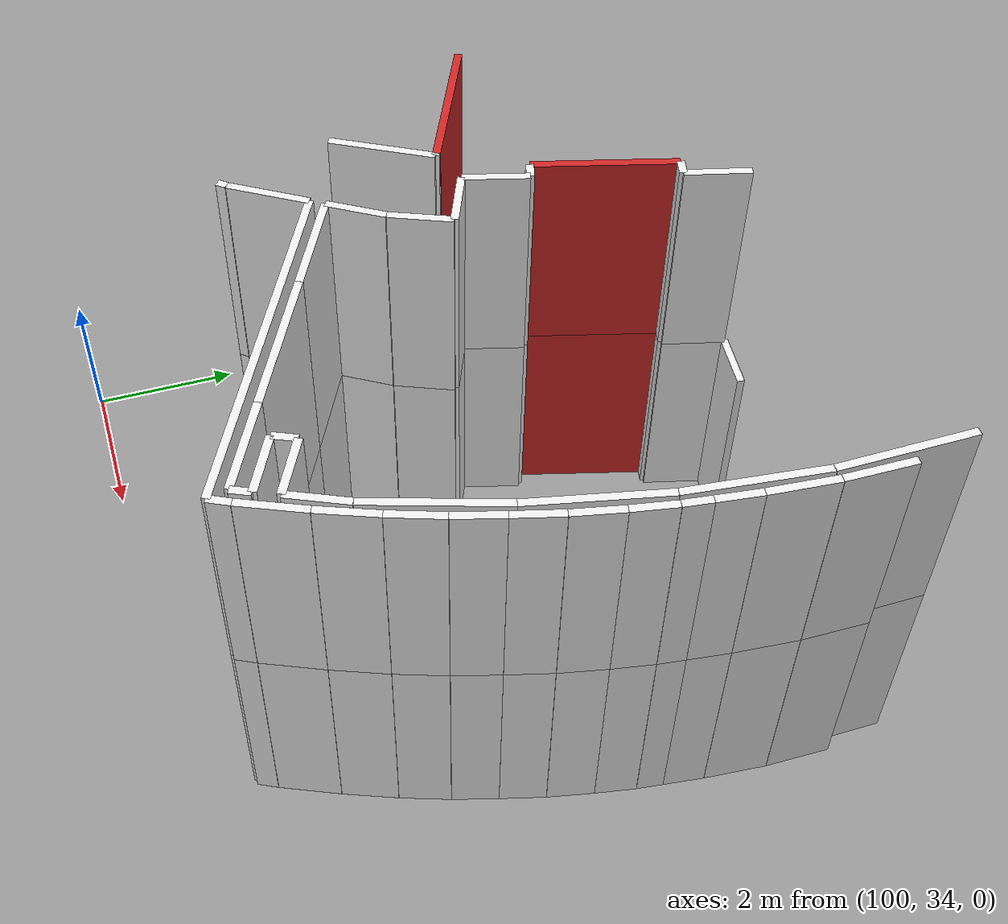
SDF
<sdf version="1.6">
 <world name="default">
  <model name="wall_101.7_39.1_1.5">
   <static>true</static>
   <pose>101.71000000002095 39.06499999994412 1.5 0 0 -0.4219085234522241</pose>
   <link name="link">
    <visual name="visual">
     <geometry><box><size>1.9291708063548034 0.1 3</size></box></geometry>
     <material>
      <script><uri>file://media/materials/scripts/gazebo.material</uri><name>Gazebo/Red</name></script>
     </material>
    </visual>
    <collision name="collision"><geometry><box><size>1.9291708063548034 0.1 3</size></box></geometry></collision>
   </link>
  </model>
  <model name="wall_103.3_40.6_1.5">
   <static>true</static>
   <pose>103.3299999999872 40.59000000008382 1.5 0 0 -1.823690391929414</pose>
   <link name="link">
    <visual name="visual">
     <geometry><box><size>1.8384776308918926 0.1 3</size></box></geometry>
     <material>
      <script><uri>file://media/materials/scripts/gazebo.material</uri><name>Gazebo/Red</name></script>
     </material>
    </visual>
    <collision name="collision"><geometry><box><size>1.8384776308918926 0.1 3</size></box></geometry></collision>
   </link>
  </model>
  <model name="wall_101.7_39.1_4.5">
   <static>true</static>
   <pose>101.71000000002095 39.06499999994412 4.5 0 0 -0.4219085234522241</pose>
   <link name="link">
    <visual name="visual">
     <geometry><box><size>1.9291708063548034 0.1 3</size></box></geometry>
     <material>
      <script><uri>file://media/materials/scripts/gazebo.material</uri><name>Gazebo/Red</name></script>
     </material>
    </visual>
    <collision name="collision"><geometry><box><size>1.9291708063548034 0.1 3</size></box></geometry></collision>
   </link>
  </model>
  <model name="wall_103.3_40.6_4.5">
   <static>true</static>
   <pose>103.3299999999872 40.59000000008382 4.5 0 0 -1.823690391929414</pose>
   <link name="link">
    <visual name="visual">
     <geometry><box><size>1.8384776308918926 0.1 3</size></box></geometry>
     <material>
      <script><uri>file://media/materials/scripts/gazebo.material</uri><name>Gazebo/Red</name></script>
     </material>
    </visual>
    <collision name="collision"><geometry><box><size>1.8384776308918926 0.1 3</size></box></geometry></collision>
   </link>
  </model>
  <model name="wall_103.7_41.9_1.5">
   <static>true</static>
   <pose>103.66500000000815 41.87999999988824 1.5 0 0 -1.8275046573099654</pose>
   <link name="link">
    <visual name="visual">
     <geometry><box><size>0.8271033790952481 0.1 3</size></box></geometry>
     <material>
      <script><uri>file://media/materials/scripts/gazebo.material</uri><name>Gazebo/White</name></script>
     </material>
    </visual>
    <collision name="collision"><geometry><box><size>0.8271033790952481 0.1 3</size></box></geometry></collision>
   </link>
  </model>
  <model name="wall_103.0_39.3_1.5">
   <static>true</static>
   <pose>103.0 39.31000000005588 1.5 0 0 -1.821799013301479</pose>
   <link name="link">
    <visual name="visual">
     <geometry><box><size>0.8052328858089288 0.1 3</size></box></geometry>
     <material>
      <script><uri>file://media/materials/scripts/gazebo.material</uri><name>Gazebo/White</name></script>
     </material>
    </visual>
    <collision name="collision"><geometry><box><size>0.8052328858089288 0.1 3</size></box></geometry></collision>
   </link>
  </model>
  <model name="wall_102.8_38.9_1.5">
   <static>true</static>
   <pose>102.8300000000163 38.949999999953434 1.5 0 0 2.736700867003636</pose>
   <link name="link">
    <visual name="visual">
     <geometry><box><size>0.15231546215213043 0.1 3</size></box></geometry>
     <material>
      <script><uri>file://media/materials/scripts/gazebo.material</uri><name>Gazebo/White</name></script>
     </material>
    </visual>
    <collision name="collision"><geometry><box><size>0.15231546215213043 0.1 3</size></box></geometry></collision>
   </link>
  </model>
  <model name="wall_102.7_38.9_1.5">
   <static>true</static>
   <pose>102.72500000000582 38.90999999991618 1.5 0 0 -2.0344439354630874</pose>
   <link name="link">
    <visual name="visual">
     <geometry><box><size>0.15652475854472905 0.1 3</size></box></geometry>
     <material>
      <script><uri>file://media/materials/scripts/gazebo.material</uri><name>Gazebo/White</name></script>
     </material>
    </visual>
    <collision name="collision"><geometry><box><size>0.15652475854472905 0.1 3</size></box></geometry></collision>
   </link>
  </model>
  <model name="wall_102.7_38.8_1.5">
   <static>true</static>
   <pose>102.67999999999302 38.84499999997206 1.5 0 0 2.677945035275761</pose>
   <link name="link">
    <visual name="visual">
     <geometry><box><size>0.022360679899947934 0.1 3</size></box></geometry>
     <material>
      <script><uri>file://media/materials/scripts/gazebo.material</uri><name>Gazebo/White</name></script>
     </material>
    </visual>
    <collision name="collision">
     <geometry><box><size>0.022360679899947934 0.1 3</size></box></geometry>
    </collision>
   </link>
  </model>
  <model name="wall_102.6_38.8_1.5">
   <static>true</static>
   <pose>102.63000000000466 38.76000000000931 1.5 0 0 -1.9890206558340546</pose>
   <link name="link">
    <visual name="visual">
     <geometry><box><size>0.19697715617209063 0.1 3</size></box></geometry>
     <material>
      <script><uri>file://media/materials/scripts/gazebo.material</uri><name>Gazebo/White</name></script>
     </material>
    </visual>
    <collision name="collision"><geometry><box><size>0.19697715617209063 0.1 3</size></box></geometry></collision>
   </link>
  </model>
  <model name="wall_102.6_38.7_1.5">
   <static>true</static>
   <pose>102.60500000001048 38.65999999991618 1.5 0 0 -0.5880026044430701</pose>
   <link name="link">
    <visual name="visual">
     <geometry><box><size>0.03605551273978751 0.1 3</size></box></geometry>
     <material>
      <script><uri>file://media/materials/scripts/gazebo.material</uri><name>Gazebo/White</name></script>
     </material>
    </visual>
    <collision name="collision"><geometry><box><size>0.03605551273978751 0.1 3</size></box></geometry></collision>
   </link>
  </model>
  <model name="wall_102.3_38.1_1.5">
   <static>true</static>
   <pose>102.30499999999302 38.05499999993481 1.5 0 0 -2.0576955586286396</pose>
   <link name="link">
    <visual name="visual">
     <geometry><box><size>1.3464768842697874 0.1 3</size></box></geometry>
     <material>
      <script><uri>file://media/materials/scripts/gazebo.material</uri><name>Gazebo/White</name></script>
     </material>
    </visual>
    <collision name="collision"><geometry><box><size>1.3464768842697874 0.1 3</size></box></geometry></collision>
   </link>
  </model>
  <model name="wall_108.5_42.2_1.5">
   <static>true</static>
   <pose>108.46499999999651 42.169999999925494 1.5 0 0 -1.5529410816701883</pose>
   <link name="link">
    <visual name="visual">
     <geometry><box><size>1.6802678354943374 0.1 3</size></box></geometry>
     <material>
      <script><uri>file://media/materials/scripts/gazebo.material</uri><name>Gazebo/White</name></script>
     </material>
    </visual>
    <collision name="collision"><geometry><box><size>1.6802678354943374 0.1 3</size></box></geometry></collision>
   </link>
  </model>
  <model name="wall_108.4_40.5_1.5">
   <static>true</static>
   <pose>108.39999999999418 40.48999999999069 1.5 0 0 -1.6657480331131271</pose>
   <link name="link">
    <visual name="visual">
     <geometry><box><size>1.6876018489427735 0.1 3</size></box></geometry>
     <material>
      <script><uri>file://media/materials/scripts/gazebo.material</uri><name>Gazebo/White</name></script>
     </material>
    </visual>
    <collision name="collision"><geometry><box><size>1.6876018489427735 0.1 3</size></box></geometry></collision>
   </link>
  </model>
  <model name="wall_108.2_38.8_1.5">
   <static>true</static>
   <pose>108.15499999999884 38.829999999841675 1.5 0 0 -1.7693642190444387</pose>
   <link name="link">
    <visual name="visual">
     <geometry><box><size>1.672871782426382 0.1 3</size></box></geometry>
     <material>
      <script><uri>file://media/materials/scripts/gazebo.material</uri><name>Gazebo/White</name></script>
     </material>
    </visual>
    <collision name="collision"><geometry><box><size>1.672871782426382 0.1 3</size></box></geometry></collision>
   </link>
  </model>
  <model name="wall_107.7_37.2_1.5">
   <static>true</static>
   <pose>107.74499999999534 37.204999999841675 1.5 0 0 -1.8662371639558804</pose>
   <link name="link">
    <visual name="visual">
     <geometry><box><size>1.6829141390965354 0.1 3</size></box></geometry>
     <material>
      <script><uri>file://media/materials/scripts/gazebo.material</uri><name>Gazebo/White</name></script>
     </material>
    </visual>
    <collision name="collision"><geometry><box><size>1.6829141390965354 0.1 3</size></box></geometry></collision>
   </link>
  </model>
  <model name="wall_107.4_36.1_1.5">
   <static>true</static>
   <pose>107.35000000000582 36.05499999993481 1.5 0 0 -1.980923667351811</pose>
   <link name="link">
    <visual name="visual">
     <geometry><box><size>0.7523961721831801 0.1 3</size></box></geometry>
     <material>
      <script><uri>file://media/materials/scripts/gazebo.material</uri><name>Gazebo/White</name></script>
     </material>
    </visual>
    <collision name="collision"><geometry><box><size>0.7523961721831801 0.1 3</size></box></geometry></collision>
   </link>
  </model>
  <model name="wall_106.9_35.9_1.5">
   <static>true</static>
   <pose>106.86000000001513 35.87999999988824 1.5 0 0 2.677945044760186</pose>
   <link name="link">
    <visual name="visual">
     <geometry><box><size>0.760263112277041 0.1 3</size></box></geometry>
     <material>
      <script><uri>file://media/materials/scripts/gazebo.material</uri><name>Gazebo/White</name></script>
     </material>
    </visual>
    <collision name="collision"><geometry><box><size>0.760263112277041 0.1 3</size></box></geometry></collision>
   </link>
  </model>
  <model name="wall_106.5_35.9_1.5">
   <static>true</static>
   <pose>106.46000000002095 35.90999999991618 1.5 0 0 -1.9756881133308752</pose>
   <link name="link">
    <visual name="visual">
     <geometry><box><size>0.3046309240443975 0.1 3</size></box></geometry>
     <material>
      <script><uri>file://media/materials/scripts/gazebo.material</uri><name>Gazebo/White</name></script>
     </material>
    </visual>
    <collision name="collision"><geometry><box><size>0.3046309240443975 0.1 3</size></box></geometry></collision>
   </link>
  </model>
  <model name="wall_106.7_35.6_1.5">
   <static>true</static>
   <pose>106.74500000002445 35.60000000009313 1.5 0 0 -0.4578337208438593</pose>
   <link name="link">
    <visual name="visual">
     <geometry><box><size>0.769220384481512 0.1 3</size></box></geometry>
     <material>
      <script><uri>file://media/materials/scripts/gazebo.material</uri><name>Gazebo/White</name></script>
     </material>
    </visual>
    <collision name="collision"><geometry><box><size>0.769220384481512 0.1 3</size></box></geometry></collision>
   </link>
  </model>
  <model name="wall_107.0_35.3_1.5">
   <static>true</static>
   <pose>107.04000000000815 35.31500000017695 1.5 0 0 -1.9809236674937056</pose>
   <link name="link">
    <visual name="visual">
     <geometry><box><size>0.25079872407653264 0.1 3</size></box></geometry>
     <material>
      <script><uri>file://media/materials/scripts/gazebo.material</uri><name>Gazebo/White</name></script>
     </material>
    </visual>
    <collision name="collision"><geometry><box><size>0.25079872407653264 0.1 3</size></box></geometry></collision>
   </link>
  </model>
  <model name="wall_106.4_35.5_1.5">
   <static>true</static>
   <pose>106.44999999998254 35.47000000020489 1.5 0 0 2.6779450445674287</pose>
   <link name="link">
    <visual name="visual">
     <geometry><box><size>1.207476707881124 0.1 3</size></box></geometry>
     <material>
      <script><uri>file://media/materials/scripts/gazebo.material</uri><name>Gazebo/White</name></script>
     </material>
    </visual>
    <collision name="collision"><geometry><box><size>1.207476707881124 0.1 3</size></box></geometry></collision>
   </link>
  </model>
  <model name="wall_105.1_36.2_1.5">
   <static>true</static>
   <pose>105.08499999999185 36.15500000002794 1.5 0 0 2.675523741995435</pose>
   <link name="link">
    <visual name="visual">
     <geometry><box><size>1.8469975634080924 0.1 3</size></box></geometry>
     <material>
      <script><uri>file://media/materials/scripts/gazebo.material</uri><name>Gazebo/White</name></script>
     </material>
    </visual>
    <collision name="collision"><geometry><box><size>1.8469975634080924 0.1 3</size></box></geometry></collision>
   </link>
  </model>
  <model name="wall_103.7_36.9_1.5">
   <static>true</static>
   <pose>103.6700000000128 36.86499999999069 1.5 0 0 2.6779450443719415</pose>
   <link name="link">
    <visual name="visual">
     <geometry><box><size>1.3192801068602384 0.1 3</size></box></geometry>
     <material>
      <script><uri>file://media/materials/scripts/gazebo.material</uri><name>Gazebo/White</name></script>
     </material>
    </visual>
    <collision name="collision"><geometry><box><size>1.3192801068602384 0.1 3</size></box></geometry></collision>
   </link>
  </model>
  <model name="wall_103.3_37.5_1.5">
   <static>true</static>
   <pose>103.27499999999418 37.485000000102445 1.5 0 0 1.0303768265111433</pose>
   <link name="link">
    <visual name="visual">
     <geometry><box><size>0.7580237462272686 0.1 3</size></box></geometry>
     <material>
      <script><uri>file://media/materials/scripts/gazebo.material</uri><name>Gazebo/White</name></script>
     </material>
    </visual>
    <collision name="collision"><geometry><box><size>0.7580237462272686 0.1 3</size></box></geometry></collision>
   </link>
  </model>
  <model name="wall_103.6_38.2_1.5">
   <static>true</static>
   <pose>103.61999999999534 38.18500000005588 1.5 0 0 1.1902899496290074</pose>
   <link name="link">
    <visual name="visual">
     <geometry><box><size>0.8077747210874698 0.1 3</size></box></geometry>
     <material>
      <script><uri>file://media/materials/scripts/gazebo.material</uri><name>Gazebo/White</name></script>
     </material>
    </visual>
    <collision name="collision"><geometry><box><size>0.8077747210874698 0.1 3</size></box></geometry></collision>
   </link>
  </model>
  <model name="wall_103.4_38.7_1.5">
   <static>true</static>
   <pose>103.43000000002212 38.699999999953434 1.5 0 0 2.750985610146119</pose>
   <link name="link">
    <visual name="visual">
     <geometry><box><size>0.7353910523495384 0.1 3</size></box></geometry>
     <material>
      <script><uri>file://media/materials/scripts/gazebo.material</uri><name>Gazebo/White</name></script>
     </material>
    </visual>
    <collision name="collision"><geometry><box><size>0.7353910523495384 0.1 3</size></box></geometry></collision>
   </link>
  </model>
  <model name="wall_103.2_39.2_1.5">
   <static>true</static>
   <pose>103.19500000000698 39.24499999987893 1.5 0 0 1.3171222307161075</pose>
   <link name="link">
    <visual name="visual">
     <geometry><box><size>0.8367795409036232 0.1 3</size></box></geometry>
     <material>
      <script><uri>file://media/materials/scripts/gazebo.material</uri><name>Gazebo/White</name></script>
     </material>
    </visual>
    <collision name="collision"><geometry><box><size>0.8367795409036232 0.1 3</size></box></geometry></collision>
   </link>
  </model>
  <model name="wall_103.2_39.7_1.5">
   <static>true</static>
   <pose>103.19999999998254 39.675000000046566 1.5 0 0 2.896613989161817</pose>
   <link name="link">
    <visual name="visual">
     <geometry><box><size>0.20615528135994066 0.1 3</size></box></geometry>
     <material>
      <script><uri>file://media/materials/scripts/gazebo.material</uri><name>Gazebo/White</name></script>
     </material>
    </visual>
    <collision name="collision"><geometry><box><size>0.20615528135994066 0.1 3</size></box></geometry></collision>
   </link>
  </model>
  <model name="wall_103.7_41.5_1.5">
   <static>true</static>
   <pose>103.66000000000349 41.45999999996275 1.5 0 0 -0.19739556001778746</pose>
   <link name="link">
    <visual name="visual">
     <geometry><box><size>0.20396078056243275 0.1 3</size></box></geometry>
     <material>
      <script><uri>file://media/materials/scripts/gazebo.material</uri><name>Gazebo/White</name></script>
     </material>
    </visual>
    <collision name="collision"><geometry><box><size>0.20396078056243275 0.1 3</size></box></geometry></collision>
   </link>
  </model>
  <model name="wall_103.9_41.8_1.5">
   <static>true</static>
   <pose>103.86000000001513 41.8499999998603 1.5 0 0 1.3315647267707733</pose>
   <link name="link">
    <visual name="visual">
     <geometry><box><size>0.8440379136802625 0.1 3</size></box></geometry>
     <material>
      <script><uri>file://media/materials/scripts/gazebo.material</uri><name>Gazebo/White</name></script>
     </material>
    </visual>
    <collision name="collision"><geometry><box><size>0.8440379136802625 0.1 3</size></box></geometry></collision>
   </link>
  </model>
  <model name="wall_104.3_42.2_1.5">
   <static>true</static>
   <pose>104.33999999999651 42.22999999998137 1.5 0 0 -0.07878396045834442</pose>
   <link name="link">
    <visual name="visual">
     <geometry><box><size>0.762364742020843 0.1 3</size></box></geometry>
     <material>
      <script><uri>file://media/materials/scripts/gazebo.material</uri><name>Gazebo/White</name></script>
     </material>
    </visual>
    <collision name="collision"><geometry><box><size>0.762364742020843 0.1 3</size></box></geometry></collision>
   </link>
  </model>
  <model name="wall_102.4_36.1_1.5">
   <static>true</static>
   <pose>102.39999999999418 36.050000000046566 1.5 0 0 0.8960553849262687</pose>
   <link name="link">
    <visual name="visual">
     <geometry><box><size>0.1280624848315624 0.1 3</size></box></geometry>
     <material>
      <script><uri>file://media/materials/scripts/gazebo.material</uri><name>Gazebo/White</name></script>
     </material>
    </visual>
    <collision name="collision"><geometry><box><size>0.1280624848315624 0.1 3</size></box></geometry></collision>
   </link>
  </model>
  <model name="wall_102.7_36.5_1.5">
   <static>true</static>
   <pose>102.70999999999185 36.545000000158325 1.5 0 0 1.0254345274736425</pose>
   <link name="link">
    <visual name="visual">
     <geometry><box><size>1.0410091259011396 0.1 3</size></box></geometry>
     <material>
      <script><uri>file://media/materials/scripts/gazebo.material</uri><name>Gazebo/White</name></script>
     </material>
    </visual>
    <collision name="collision"><geometry><box><size>1.0410091259011396 0.1 3</size></box></geometry></collision>
   </link>
  </model>
  <model name="wall_105.0_36.0_1.5">
   <static>true</static>
   <pose>105.00999999998021 35.97000000020489 1.5 0 0 -0.46561611040271994</pose>
   <link name="link">
    <visual name="visual">
     <geometry><box><size>4.543698933702924 0.1 3</size></box></geometry>
     <material>
      <script><uri>file://media/materials/scripts/gazebo.material</uri><name>Gazebo/White</name></script>
     </material>
    </visual>
    <collision name="collision"><geometry><box><size>4.543698933702924 0.1 3</size></box></geometry></collision>
   </link>
  </model>
  <model name="wall_107.1_35.1_1.5">
   <static>true</static>
   <pose>107.09999999997672 35.075000000186265 1.5 0 0 1.1232763516528652</pose>
   <link name="link">
    <visual name="visual">
     <geometry><box><size>0.2773084924752259 0.1 3</size></box></geometry>
     <material>
      <script><uri>file://media/materials/scripts/gazebo.material</uri><name>Gazebo/White</name></script>
     </material>
    </visual>
    <collision name="collision"><geometry><box><size>0.2773084924752259 0.1 3</size></box></geometry></collision>
   </link>
  </model>
  <model name="wall_107.3_35.6_1.5">
   <static>true</static>
   <pose>107.31999999997788 35.580000000074506 1.5 0 0 1.1722738810154851</pose>
   <link name="link">
    <visual name="visual">
     <geometry><box><size>0.8246211249202411 0.1 3</size></box></geometry>
     <material>
      <script><uri>file://media/materials/scripts/gazebo.material</uri><name>Gazebo/White</name></script>
     </material>
    </visual>
    <collision name="collision"><geometry><box><size>0.8246211249202411 0.1 3</size></box></geometry></collision>
   </link>
  </model>
  <model name="wall_107.6_36.3_1.5">
   <static>true</static>
   <pose>107.60999999998603 36.30499999993481 1.5 0 0 1.2104383562315624</pose>
   <link name="link">
    <visual name="visual">
     <geometry><box><size>0.7373601561840247 0.1 3</size></box></geometry>
     <material>
      <script><uri>file://media/materials/scripts/gazebo.material</uri><name>Gazebo/White</name></script>
     </material>
    </visual>
    <collision name="collision"><geometry><box><size>0.7373601561840247 0.1 3</size></box></geometry></collision>
   </link>
  </model>
  <model name="wall_107.8_37.0_1.5">
   <static>true</static>
   <pose>107.84500000000116 36.96999999997206 1.5 0 0 1.2537405736165406</pose>
   <link name="link">
    <visual name="visual">
     <geometry><box><size>0.6735725648923759 0.1 3</size></box></geometry>
     <material>
      <script><uri>file://media/materials/scripts/gazebo.material</uri><name>Gazebo/White</name></script>
     </material>
    </visual>
    <collision name="collision"><geometry><box><size>0.6735725648923759 0.1 3</size></box></geometry></collision>
   </link>
  </model>
  <model name="wall_108.0_37.6_1.5">
   <static>true</static>
   <pose>108.02999999999884 37.58499999996275 1.5 0 0 1.3059789968657436</pose>
   <link name="link">
    <visual name="visual">
     <geometry><box><size>0.6113100684725965 0.1 3</size></box></geometry>
     <material>
      <script><uri>file://media/materials/scripts/gazebo.material</uri><name>Gazebo/White</name></script>
     </material>
    </visual>
    <collision name="collision"><geometry><box><size>0.6113100684725965 0.1 3</size></box></geometry></collision>
   </link>
  </model>
  <model name="wall_108.2_38.2_1.5">
   <static>true</static>
   <pose>108.18499999999767 38.175000000046566 1.5 0 0 1.3218336210932762</pose>
   <link name="link">
    <visual name="visual">
     <geometry><box><size>0.6087692505216008 0.1 3</size></box></geometry>
     <material>
      <script><uri>file://media/materials/scripts/gazebo.material</uri><name>Gazebo/White</name></script>
     </material>
    </visual>
    <collision name="collision"><geometry><box><size>0.6087692505216008 0.1 3</size></box></geometry></collision>
   </link>
  </model>
  <model name="wall_108.3_38.8_1.5">
   <static>true</static>
   <pose>108.32000000000698 38.7750000001397 1.5 0 0 1.3765553305803602</pose>
   <link name="link">
    <visual name="visual">
     <geometry><box><size>0.6216912415659501 0.1 3</size></box></geometry>
     <material>
      <script><uri>file://media/materials/scripts/gazebo.material</uri><name>Gazebo/White</name></script>
     </material>
    </visual>
    <collision name="collision"><geometry><box><size>0.6216912415659501 0.1 3</size></box></geometry></collision>
   </link>
  </model>
  <model name="wall_108.4_39.4_1.5">
   <static>true</static>
   <pose>108.42499999998836 39.35000000009313 1.5 0 0 1.4056476494501888</pose>
   <link name="link">
    <visual name="visual">
     <geometry><box><size>0.547448627758227 0.1 3</size></box></geometry>
     <material>
      <script><uri>file://media/materials/scripts/gazebo.material</uri><name>Gazebo/White</name></script>
     </material>
    </visual>
    <collision name="collision"><geometry><box><size>0.547448627758227 0.1 3</size></box></geometry></collision>
   </link>
  </model>
  <model name="wall_108.5_39.8_1.5">
   <static>true</static>
   <pose>108.48999999999069 39.795000000158325 1.5 0 0 1.4570043195761424</pose>
   <link name="link">
    <visual name="visual">
     <geometry><box><size>0.35227829917293063 0.1 3</size></box></geometry>
     <material>
      <script><uri>file://media/materials/scripts/gazebo.material</uri><name>Gazebo/White</name></script>
     </material>
    </visual>
    <collision name="collision"><geometry><box><size>0.35227829917293063 0.1 3</size></box></geometry></collision>
   </link>
  </model>
  <model name="wall_108.5_40.2_1.5">
   <static>true</static>
   <pose>108.54000000000815 40.23999999999069 1.5 0 0 1.4601391055381852</pose>
   <link name="link">
    <visual name="visual">
     <geometry><box><size>0.5433231078621997 0.1 3</size></box></geometry>
     <material>
      <script><uri>file://media/materials/scripts/gazebo.material</uri><name>Gazebo/White</name></script>
     </material>
    </visual>
    <collision name="collision"><geometry><box><size>0.5433231078621997 0.1 3</size></box></geometry></collision>
   </link>
  </model>
  <model name="wall_108.6_40.9_1.5">
   <static>true</static>
   <pose>108.60000000000582 40.92999999993481 1.5 0 0 1.4994888620391533</pose>
   <link name="link">
    <visual name="visual">
     <geometry><box><size>0.8421401311727711 0.1 3</size></box></geometry>
     <material>
      <script><uri>file://media/materials/scripts/gazebo.material</uri><name>Gazebo/White</name></script>
     </material>
    </visual>
    <collision name="collision"><geometry><box><size>0.8421401311727711 0.1 3</size></box></geometry></collision>
   </link>
  </model>
  <model name="wall_108.6_41.8_1.5">
   <static>true</static>
   <pose>108.63000000000466 41.78500000014901 1.5 0 0 1.5707963267948966</pose>
   <link name="link">
    <visual name="visual">
     <geometry><box><size>0.8700000001117587 0.1 3</size></box></geometry>
     <material>
      <script><uri>file://media/materials/scripts/gazebo.material</uri><name>Gazebo/White</name></script>
     </material>
    </visual>
    <collision name="collision"><geometry><box><size>0.8700000001117587 0.1 3</size></box></geometry></collision>
   </link>
  </model>
  <model name="wall_108.5_40.7_1.5">
   <static>true</static>
   <pose>108.50500000000466 40.6500000001397 1.5 0 0 -1.6502465656866598</pose>
   <link name="link">
    <visual name="visual">
     <geometry><box><size>3.149936507426589 0.1 3</size></box></geometry>
     <material>
      <script><uri>file://media/materials/scripts/gazebo.material</uri><name>Gazebo/White</name></script>
     </material>
    </visual>
    <collision name="collision"><geometry><box><size>3.149936507426589 0.1 3</size></box></geometry></collision>
   </link>
  </model>
  <model name="wall_107.7_37.0_1.5">
   <static>true</static>
   <pose>107.70999999999185 37.015000000130385 1.5 0 0 -1.8845353992981464</pose>
   <link name="link">
    <visual name="visual">
     <geometry><box><size>4.341946567974497 0.1 3</size></box></geometry>
     <material>
      <script><uri>file://media/materials/scripts/gazebo.material</uri><name>Gazebo/White</name></script>
     </material>
    </visual>
    <collision name="collision"><geometry><box><size>4.341946567974497 0.1 3</size></box></geometry></collision>
   </link>
  </model>
  <model name="wall_102.6_38.7_4.5">
   <static>true</static>
   <pose>102.60500000001048 38.65999999991618 4.5 0 0 -0.5880026044430701</pose>
   <link name="link">
    <visual name="visual">
     <geometry><box><size>0.03605551273978751 0.1 3</size></box></geometry>
     <material>
      <script><uri>file://media/materials/scripts/gazebo.material</uri><name>Gazebo/White</name></script>
     </material>
    </visual>
    <collision name="collision"><geometry><box><size>0.03605551273978751 0.1 3</size></box></geometry></collision>
   </link>
  </model>
  <model name="wall_102.3_38.1_4.5">
   <static>true</static>
   <pose>102.30499999999302 38.05499999993481 4.5 0 0 -2.0576955586286396</pose>
   <link name="link">
    <visual name="visual">
     <geometry><box><size>1.3464768842697874 0.1 3</size></box></geometry>
     <material>
      <script><uri>file://media/materials/scripts/gazebo.material</uri><name>Gazebo/White</name></script>
     </material>
    </visual>
    <collision name="collision"><geometry><box><size>1.3464768842697874 0.1 3</size></box></geometry></collision>
   </link>
  </model>
  <model name="wall_108.5_42.2_4.5">
   <static>true</static>
   <pose>108.46499999999651 42.169999999925494 4.5 0 0 -1.5529410816701883</pose>
   <link name="link">
    <visual name="visual">
     <geometry><box><size>1.6802678354943374 0.1 3</size></box></geometry>
     <material>
      <script><uri>file://media/materials/scripts/gazebo.material</uri><name>Gazebo/White</name></script>
     </material>
    </visual>
    <collision name="collision"><geometry><box><size>1.6802678354943374 0.1 3</size></box></geometry></collision>
   </link>
  </model>
  <model name="wall_108.4_40.5_4.5">
   <static>true</static>
   <pose>108.39999999999418 40.48999999999069 4.5 0 0 -1.6657480331131271</pose>
   <link name="link">
    <visual name="visual">
     <geometry><box><size>1.6876018489427735 0.1 3</size></box></geometry>
     <material>
      <script><uri>file://media/materials/scripts/gazebo.material</uri><name>Gazebo/White</name></script>
     </material>
    </visual>
    <collision name="collision"><geometry><box><size>1.6876018489427735 0.1 3</size></box></geometry></collision>
   </link>
  </model>
  <model name="wall_108.2_38.8_4.5">
   <static>true</static>
   <pose>108.15499999999884 38.829999999841675 4.5 0 0 -1.7693642190444387</pose>
   <link name="link">
    <visual name="visual">
     <geometry><box><size>1.672871782426382 0.1 3</size></box></geometry>
     <material>
      <script><uri>file://media/materials/scripts/gazebo.material</uri><name>Gazebo/White</name></script>
     </material>
    </visual>
    <collision name="collision"><geometry><box><size>1.672871782426382 0.1 3</size></box></geometry></collision>
   </link>
  </model>
  <model name="wall_107.7_37.2_4.5">
   <static>true</static>
   <pose>107.74499999999534 37.204999999841675 4.5 0 0 -1.8662371639558804</pose>
   <link name="link">
    <visual name="visual">
     <geometry><box><size>1.6829141390965354 0.1 3</size></box></geometry>
     <material>
      <script><uri>file://media/materials/scripts/gazebo.material</uri><name>Gazebo/White</name></script>
     </material>
    </visual>
    <collision name="collision"><geometry><box><size>1.6829141390965354 0.1 3</size></box></geometry></collision>
   </link>
  </model>
  <model name="wall_107.4_36.1_4.5">
   <static>true</static>
   <pose>107.35000000000582 36.05499999993481 4.5 0 0 -1.980923667351811</pose>
   <link name="link">
    <visual name="visual">
     <geometry><box><size>0.7523961721831801 0.1 3</size></box></geometry>
     <material>
      <script><uri>file://media/materials/scripts/gazebo.material</uri><name>Gazebo/White</name></script>
     </material>
    </visual>
    <collision name="collision"><geometry><box><size>0.7523961721831801 0.1 3</size></box></geometry></collision>
   </link>
  </model>
  <model name="wall_106.9_35.9_4.5">
   <static>true</static>
   <pose>106.86000000001513 35.87999999988824 4.5 0 0 2.677945044760186</pose>
   <link name="link">
    <visual name="visual">
     <geometry><box><size>0.760263112277041 0.1 3</size></box></geometry>
     <material>
      <script><uri>file://media/materials/scripts/gazebo.material</uri><name>Gazebo/White</name></script>
     </material>
    </visual>
    <collision name="collision"><geometry><box><size>0.760263112277041 0.1 3</size></box></geometry></collision>
   </link>
  </model>
  <model name="wall_106.5_35.9_4.5">
   <static>true</static>
   <pose>106.46000000002095 35.90999999991618 4.5 0 0 -1.9756881133308752</pose>
   <link name="link">
    <visual name="visual">
     <geometry><box><size>0.3046309240443975 0.1 3</size></box></geometry>
     <material>
      <script><uri>file://media/materials/scripts/gazebo.material</uri><name>Gazebo/White</name></script>
     </material>
    </visual>
    <collision name="collision"><geometry><box><size>0.3046309240443975 0.1 3</size></box></geometry></collision>
   </link>
  </model>
  <model name="wall_106.7_35.6_4.5">
   <static>true</static>
   <pose>106.74500000002445 35.60000000009313 4.5 0 0 -0.4578337208438593</pose>
   <link name="link">
    <visual name="visual">
     <geometry><box><size>0.769220384481512 0.1 3</size></box></geometry>
     <material>
      <script><uri>file://media/materials/scripts/gazebo.material</uri><name>Gazebo/White</name></script>
     </material>
    </visual>
    <collision name="collision"><geometry><box><size>0.769220384481512 0.1 3</size></box></geometry></collision>
   </link>
  </model>
  <model name="wall_107.0_35.3_4.5">
   <static>true</static>
   <pose>107.04000000000815 35.31500000017695 4.5 0 0 -1.9809236674937056</pose>
   <link name="link">
    <visual name="visual">
     <geometry><box><size>0.25079872407653264 0.1 3</size></box></geometry>
     <material>
      <script><uri>file://media/materials/scripts/gazebo.material</uri><name>Gazebo/White</name></script>
     </material>
    </visual>
    <collision name="collision"><geometry><box><size>0.25079872407653264 0.1 3</size></box></geometry></collision>
   </link>
  </model>
  <model name="wall_106.4_35.5_4.5">
   <static>true</static>
   <pose>106.44999999998254 35.47000000020489 4.5 0 0 2.6779450445674287</pose>
   <link name="link">
    <visual name="visual">
     <geometry><box><size>1.207476707881124 0.1 3</size></box></geometry>
     <material>
      <script><uri>file://media/materials/scripts/gazebo.material</uri><name>Gazebo/White</name></script>
     </material>
    </visual>
    <collision name="collision"><geometry><box><size>1.207476707881124 0.1 3</size></box></geometry></collision>
   </link>
  </model>
  <model name="wall_105.1_36.2_4.5">
   <static>true</static>
   <pose>105.08499999999185 36.15500000002794 4.5 0 0 2.675523741995435</pose>
   <link name="link">
    <visual name="visual">
     <geometry><box><size>1.8469975634080924 0.1 3</size></box></geometry>
     <material>
      <script><uri>file://media/materials/scripts/gazebo.material</uri><name>Gazebo/White</name></script>
     </material>
    </visual>
    <collision name="collision"><geometry><box><size>1.8469975634080924 0.1 3</size></box></geometry></collision>
   </link>
  </model>
  <model name="wall_103.7_36.9_4.5">
   <static>true</static>
   <pose>103.6700000000128 36.86499999999069 4.5 0 0 2.6779450443719415</pose>
   <link name="link">
    <visual name="visual">
     <geometry><box><size>1.3192801068602384 0.1 3</size></box></geometry>
     <material>
      <script><uri>file://media/materials/scripts/gazebo.material</uri><name>Gazebo/White</name></script>
     </material>
    </visual>
    <collision name="collision"><geometry><box><size>1.3192801068602384 0.1 3</size></box></geometry></collision>
   </link>
  </model>
  <model name="wall_103.3_37.5_4.5">
   <static>true</static>
   <pose>103.27499999999418 37.485000000102445 4.5 0 0 1.0303768265111433</pose>
   <link name="link">
    <visual name="visual">
     <geometry><box><size>0.7580237462272686 0.1 3</size></box></geometry>
     <material>
      <script><uri>file://media/materials/scripts/gazebo.material</uri><name>Gazebo/White</name></script>
     </material>
    </visual>
    <collision name="collision"><geometry><box><size>0.7580237462272686 0.1 3</size></box></geometry></collision>
   </link>
  </model>
  <model name="wall_103.6_38.2_4.5">
   <static>true</static>
   <pose>103.61999999999534 38.18500000005588 4.5 0 0 1.1902899496290074</pose>
   <link name="link">
    <visual name="visual">
     <geometry><box><size>0.8077747210874698 0.1 3</size></box></geometry>
     <material>
      <script><uri>file://media/materials/scripts/gazebo.material</uri><name>Gazebo/White</name></script>
     </material>
    </visual>
    <collision name="collision"><geometry><box><size>0.8077747210874698 0.1 3</size></box></geometry></collision>
   </link>
  </model>
  <model name="wall_103.4_38.7_4.5">
   <static>true</static>
   <pose>103.43000000002212 38.699999999953434 4.5 0 0 2.750985610146119</pose>
   <link name="link">
    <visual name="visual">
     <geometry><box><size>0.7353910523495384 0.1 3</size></box></geometry>
     <material>
      <script><uri>file://media/materials/scripts/gazebo.material</uri><name>Gazebo/White</name></script>
     </material>
    </visual>
    <collision name="collision"><geometry><box><size>0.7353910523495384 0.1 3</size></box></geometry></collision>
   </link>
  </model>
  <model name="wall_103.2_39.2_4.5">
   <static>true</static>
   <pose>103.19500000000698 39.24499999987893 4.5 0 0 1.3171222307161075</pose>
   <link name="link">
    <visual name="visual">
     <geometry><box><size>0.8367795409036232 0.1 3</size></box></geometry>
     <material>
      <script><uri>file://media/materials/scripts/gazebo.material</uri><name>Gazebo/White</name></script>
     </material>
    </visual>
    <collision name="collision"><geometry><box><size>0.8367795409036232 0.1 3</size></box></geometry></collision>
   </link>
  </model>
  <model name="wall_103.2_39.7_4.5">
   <static>true</static>
   <pose>103.19999999998254 39.675000000046566 4.5 0 0 2.896613989161817</pose>
   <link name="link">
    <visual name="visual">
     <geometry><box><size>0.20615528135994066 0.1 3</size></box></geometry>
     <material>
      <script><uri>file://media/materials/scripts/gazebo.material</uri><name>Gazebo/White</name></script>
     </material>
    </visual>
    <collision name="collision"><geometry><box><size>0.20615528135994066 0.1 3</size></box></geometry></collision>
   </link>
  </model>
  <model name="wall_103.7_41.5_4.5">
   <static>true</static>
   <pose>103.66000000000349 41.45999999996275 4.5 0 0 -0.19739556001778746</pose>
   <link name="link">
    <visual name="visual">
     <geometry><box><size>0.20396078056243275 0.1 3</size></box></geometry>
     <material>
      <script><uri>file://media/materials/scripts/gazebo.material</uri><name>Gazebo/White</name></script>
     </material>
    </visual>
    <collision name="collision"><geometry><box><size>0.20396078056243275 0.1 3</size></box></geometry></collision>
   </link>
  </model>
  <model name="wall_103.9_41.8_4.5">
   <static>true</static>
   <pose>103.86000000001513 41.8499999998603 4.5 0 0 1.3315647267707733</pose>
   <link name="link">
    <visual name="visual">
     <geometry><box><size>0.8440379136802625 0.1 3</size></box></geometry>
     <material>
      <script><uri>file://media/materials/scripts/gazebo.material</uri><name>Gazebo/White</name></script>
     </material>
    </visual>
    <collision name="collision"><geometry><box><size>0.8440379136802625 0.1 3</size></box></geometry></collision>
   </link>
  </model>
  <model name="wall_102.4_36.1_4.5">
   <static>true</static>
   <pose>102.39999999999418 36.050000000046566 4.5 0 0 0.8960553849262687</pose>
   <link name="link">
    <visual name="visual">
     <geometry><box><size>0.1280624848315624 0.1 3</size></box></geometry>
     <material>
      <script><uri>file://media/materials/scripts/gazebo.material</uri><name>Gazebo/White</name></script>
     </material>
    </visual>
    <collision name="collision"><geometry><box><size>0.1280624848315624 0.1 3</size></box></geometry></collision>
   </link>
  </model>
  <model name="wall_102.7_36.5_4.5">
   <static>true</static>
   <pose>102.70999999999185 36.545000000158325 4.5 0 0 1.0254345274736425</pose>
   <link name="link">
    <visual name="visual">
     <geometry><box><size>1.0410091259011396 0.1 3</size></box></geometry>
     <material>
      <script><uri>file://media/materials/scripts/gazebo.material</uri><name>Gazebo/White</name></script>
     </material>
    </visual>
    <collision name="collision"><geometry><box><size>1.0410091259011396 0.1 3</size></box></geometry></collision>
   </link>
  </model>
  <model name="wall_105.0_36.0_4.5">
   <static>true</static>
   <pose>105.00999999998021 35.97000000020489 4.5 0 0 -0.46561611040271994</pose>
   <link name="link">
    <visual name="visual">
     <geometry><box><size>4.543698933702924 0.1 3</size></box></geometry>
     <material>
      <script><uri>file://media/materials/scripts/gazebo.material</uri><name>Gazebo/White</name></script>
     </material>
    </visual>
    <collision name="collision"><geometry><box><size>4.543698933702924 0.1 3</size></box></geometry></collision>
   </link>
  </model>
  <model name="wall_107.1_35.1_4.5">
   <static>true</static>
   <pose>107.09999999997672 35.075000000186265 4.5 0 0 1.1232763516528652</pose>
   <link name="link">
    <visual name="visual">
     <geometry><box><size>0.2773084924752259 0.1 3</size></box></geometry>
     <material>
      <script><uri>file://media/materials/scripts/gazebo.material</uri><name>Gazebo/White</name></script>
     </material>
    </visual>
    <collision name="collision"><geometry><box><size>0.2773084924752259 0.1 3</size></box></geometry></collision>
   </link>
  </model>
  <model name="wall_107.3_35.6_4.5">
   <static>true</static>
   <pose>107.31999999997788 35.580000000074506 4.5 0 0 1.1722738810154851</pose>
   <link name="link">
    <visual name="visual">
     <geometry><box><size>0.8246211249202411 0.1 3</size></box></geometry>
     <material>
      <script><uri>file://media/materials/scripts/gazebo.material</uri><name>Gazebo/White</name></script>
     </material>
    </visual>
    <collision name="collision"><geometry><box><size>0.8246211249202411 0.1 3</size></box></geometry></collision>
   </link>
  </model>
  <model name="wall_107.6_36.3_4.5">
   <static>true</static>
   <pose>107.60999999998603 36.30499999993481 4.5 0 0 1.2104383562315624</pose>
   <link name="link">
    <visual name="visual">
     <geometry><box><size>0.7373601561840247 0.1 3</size></box></geometry>
     <material>
      <script><uri>file://media/materials/scripts/gazebo.material</uri><name>Gazebo/White</name></script>
     </material>
    </visual>
    <collision name="collision"><geometry><box><size>0.7373601561840247 0.1 3</size></box></geometry></collision>
   </link>
  </model>
  <model name="wall_107.8_37.0_4.5">
   <static>true</static>
   <pose>107.84500000000116 36.96999999997206 4.5 0 0 1.2537405736165406</pose>
   <link name="link">
    <visual name="visual">
     <geometry><box><size>0.6735725648923759 0.1 3</size></box></geometry>
     <material>
      <script><uri>file://media/materials/scripts/gazebo.material</uri><name>Gazebo/White</name></script>
     </material>
    </visual>
    <collision name="collision"><geometry><box><size>0.6735725648923759 0.1 3</size></box></geometry></collision>
   </link>
  </model>
  <model name="wall_108.0_37.6_4.5">
   <static>true</static>
   <pose>108.02999999999884 37.58499999996275 4.5 0 0 1.3059789968657436</pose>
   <link name="link">
    <visual name="visual">
     <geometry><box><size>0.6113100684725965 0.1 3</size></box></geometry>
     <material>
      <script><uri>file://media/materials/scripts/gazebo.material</uri><name>Gazebo/White</name></script>
     </material>
    </visual>
    <collision name="collision"><geometry><box><size>0.6113100684725965 0.1 3</size></box></geometry></collision>
   </link>
  </model>
  <model name="wall_108.2_38.2_4.5">
   <static>true</static>
   <pose>108.18499999999767 38.175000000046566 4.5 0 0 1.3218336210932762</pose>
   <link name="link">
    <visual name="visual">
     <geometry><box><size>0.6087692505216008 0.1 3</size></box></geometry>
     <material>
      <script><uri>file://media/materials/scripts/gazebo.material</uri><name>Gazebo/White</name></script>
     </material>
    </visual>
    <collision name="collision"><geometry><box><size>0.6087692505216008 0.1 3</size></box></geometry></collision>
   </link>
  </model>
  <model name="wall_108.3_38.8_4.5">
   <static>true</static>
   <pose>108.32000000000698 38.7750000001397 4.5 0 0 1.3765553305803602</pose>
   <link name="link">
    <visual name="visual">
     <geometry><box><size>0.6216912415659501 0.1 3</size></box></geometry>
     <material>
      <script><uri>file://media/materials/scripts/gazebo.material</uri><name>Gazebo/White</name></script>
     </material>
    </visual>
    <collision name="collision"><geometry><box><size>0.6216912415659501 0.1 3</size></box></geometry></collision>
   </link>
  </model>
  <model name="wall_108.4_39.4_4.5">
   <static>true</static>
   <pose>108.42499999998836 39.35000000009313 4.5 0 0 1.4056476494501888</pose>
   <link name="link">
    <visual name="visual">
     <geometry><box><size>0.547448627758227 0.1 3</size></box></geometry>
     <material>
      <script><uri>file://media/materials/scripts/gazebo.material</uri><name>Gazebo/White</name></script>
     </material>
    </visual>
    <collision name="collision"><geometry><box><size>0.547448627758227 0.1 3</size></box></geometry></collision>
   </link>
  </model>
  <model name="wall_108.5_39.8_4.5">
   <static>true</static>
   <pose>108.48999999999069 39.795000000158325 4.5 0 0 1.4570043195761424</pose>
   <link name="link">
    <visual name="visual">
     <geometry><box><size>0.35227829917293063 0.1 3</size></box></geometry>
     <material>
      <script><uri>file://media/materials/scripts/gazebo.material</uri><name>Gazebo/White</name></script>
     </material>
    </visual>
    <collision name="collision"><geometry><box><size>0.35227829917293063 0.1 3</size></box></geometry></collision>
   </link>
  </model>
  <model name="wall_108.5_40.2_4.5">
   <static>true</static>
   <pose>108.54000000000815 40.23999999999069 4.5 0 0 1.4601391055381852</pose>
   <link name="link">
    <visual name="visual">
     <geometry><box><size>0.5433231078621997 0.1 3</size></box></geometry>
     <material>
      <script><uri>file://media/materials/scripts/gazebo.material</uri><name>Gazebo/White</name></script>
     </material>
    </visual>
    <collision name="collision"><geometry><box><size>0.5433231078621997 0.1 3</size></box></geometry></collision>
   </link>
  </model>
  <model name="wall_108.6_40.9_4.5">
   <static>true</static>
   <pose>108.60000000000582 40.92999999993481 4.5 0 0 1.4994888620391533</pose>
   <link name="link">
    <visual name="visual">
     <geometry><box><size>0.8421401311727711 0.1 3</size></box></geometry>
     <material>
      <script><uri>file://media/materials/scripts/gazebo.material</uri><name>Gazebo/White</name></script>
     </material>
    </visual>
    <collision name="collision"><geometry><box><size>0.8421401311727711 0.1 3</size></box></geometry></collision>
   </link>
  </model>
  <model name="wall_108.6_41.8_4.5">
   <static>true</static>
   <pose>108.63000000000466 41.78500000014901 4.5 0 0 1.5707963267948966</pose>
   <link name="link">
    <visual name="visual">
     <geometry><box><size>0.8700000001117587 0.1 3</size></box></geometry>
     <material>
      <script><uri>file://media/materials/scripts/gazebo.material</uri><name>Gazebo/White</name></script>
     </material>
    </visual>
    <collision name="collision"><geometry><box><size>0.8700000001117587 0.1 3</size></box></geometry></collision>
   </link>
  </model>
 </world>
</sdf>
